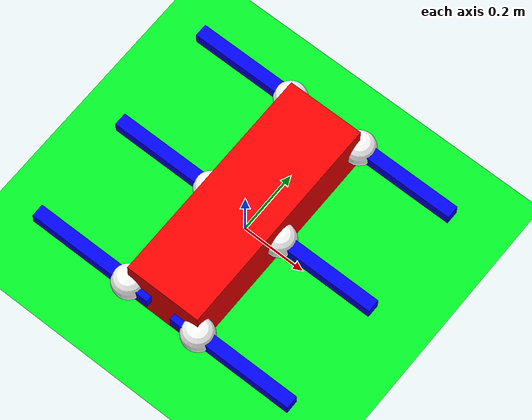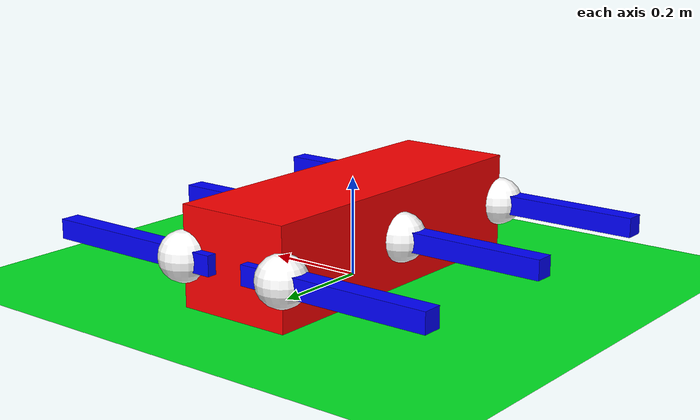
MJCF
<mujoco model="genghis">
    <default>
        <joint type="hinge"/>
    </default>

    <worldbody>
        <light name="top" pos="0 0 4"/>
        <camera name="plan" pos="0 0 40" quat="1 0 0 0" fovy="10"/>
        <camera name="zoom_plan" pos="0 0 40" quat="1 0 0 0" fovy="3"/>
        <camera name="side" pos="0 0 0" quat="1 0 0 0"/>

        <body name="plain">
            <geom name="ground" type="plane" size="12 12 12" rgba="0.00 0.91 0.14 1"/>
        </body>

        <body name="genghis" pos="0 0 0.1">
            <freejoint/>
            <geom type="box" size="0.12 0.35 0.1" rgba="1 0 0 1"/>

            <!-- Leg 1 (front right) -->
            <body name="leg1_base" pos="0.12 0.35 0">
                <joint name="leg1_pitch" axis="0 -1 0" limited="true" range="-90 -20"/>
                <joint name="leg1_yaw" axis="0 0 1" limited="true" range="-45 45"/>
                <geom name="ball1" size="0.05 0.05 0.05" rgba="1 1 1 1"/>

                <body name="leg1" pos="0.12 0 0">
                    <geom type="box" size="0.2 0.02 0.02" rgba="0 0 1 1"/>
                </body>
            </body>

            <!-- Leg 2 (middle right) -->
            <body name="leg2_base" pos="0.12 0 0">
                <joint name="leg2_pitch" axis="0 -1 0" limited="true" range="-90 -20"/>
                <joint name="leg2_yaw" axis="0 0 1" limited="true" range="-45 45"/>
                <geom name="ball2" size="0.05 0.05 0.05" rgba="1 1 1 1"/>

                <body name="leg2" pos="0.12 0 0">
                    <geom type="box" size="0.2 0.02 0.02" rgba="0 0 1 1"/>
                </body>
            </body>

            <!-- Leg 3 (rear right) -->
            <body name="leg3_base" pos="0.12 -0.35 0">
                <joint name="leg3_pitch" axis="0 -1 0" limited="true" range="-90 -20"/>
                <joint name="leg3_yaw" axis="0 0 1" limited="true" range="-45 45"/>
                <geom name="ball3" size="0.05 0.05 0.05" rgba="1 1 1 1"/>

                <body name="leg3" pos="0.12 0 0">
                    <geom type="box" size="0.2 0.02 0.02" rgba="0 0 1 1"/>
                </body>
            </body>

            <!-- Leg 4 (front left) -->
            <body name="leg4_base" pos="-0.12 0.35 0">
                <joint name="leg4_pitch" axis="0 1 0" limited="true" range="-90 -20"/>
                <joint name="leg4_yaw" axis="0 0 1" limited="true" range="-45 45"/>
                <geom name="ball4" size="0.05 0.05 0.05" rgba="1 1 1 1"/>

                <body name="leg4" pos="-0.12 0 0">
                    <geom type="box" size="0.2 0.02 0.02" rgba="0 0 1 1"/>
                </body>
            </body>

            <!-- Leg 5 (middle left) -->
            <body name="leg5_base" pos="-0.12 0 0">
                <joint name="leg5_pitch" axis="0 1 0" limited="true" range="-90 -20"/>
                <joint name="leg5_yaw" axis="0 0 1" limited="true" range="-45 45"/>
                <geom name="ball5" size="0.05 0.05 0.05" rgba="1 1 1 1"/>

                <body name="leg5" pos="-0.12 0 0">
                    <geom type="box" size="0.2 0.02 0.02" rgba="0 0 1 1"/>
                </body>
            </body>

            <!-- Leg 6 (rear left) -->
            <body name="leg6_base" pos="-0.12 -0.35 0">
                <joint name="leg6_pitch" axis="0 1 0" limited="true" range="-90 -20"/>
                <joint name="leg6_yaw" axis="0 0 1" limited="true" range="-45 45"/>
                <geom name="ball6" size="0.05 0.05 0.05" rgba="1 1 1 1"/>

                <body name="leg6" pos="-0.12 0 0">
                    <geom type="box" size="0.2 0.02 0.02" rgba="0 0 1 1"/>
                </body>
            </body>

        </body>
    </worldbody>

    <actuator>
        <!-- pitch -->
        <position name="leg1_pitch_actuator" joint="leg1_pitch"/>
        <position name="leg2_pitch_actuator" joint="leg2_pitch"/>
        <position name="leg3_pitch_actuator" joint="leg3_pitch"/>
        <position name="leg4_pitch_actuator" joint="leg4_pitch"/>
        <position name="leg5_pitch_actuator" joint="leg5_pitch"/>
        <position name="leg6_pitch_actuator" joint="leg6_pitch"/>

        <!-- yaw -->
        <position name="leg1_yaw_actuator" joint="leg1_yaw"/>
        <position name="leg2_yaw_actuator" joint="leg2_yaw"/>
        <position name="leg3_yaw_actuator" joint="leg3_yaw"/>
        <position name="leg4_yaw_actuator" joint="leg4_yaw"/>
        <position name="leg5_yaw_actuator" joint="leg5_yaw"/>
        <position name="leg6_yaw_actuator" joint="leg6_yaw"/>
    </actuator>
</mujoco>
